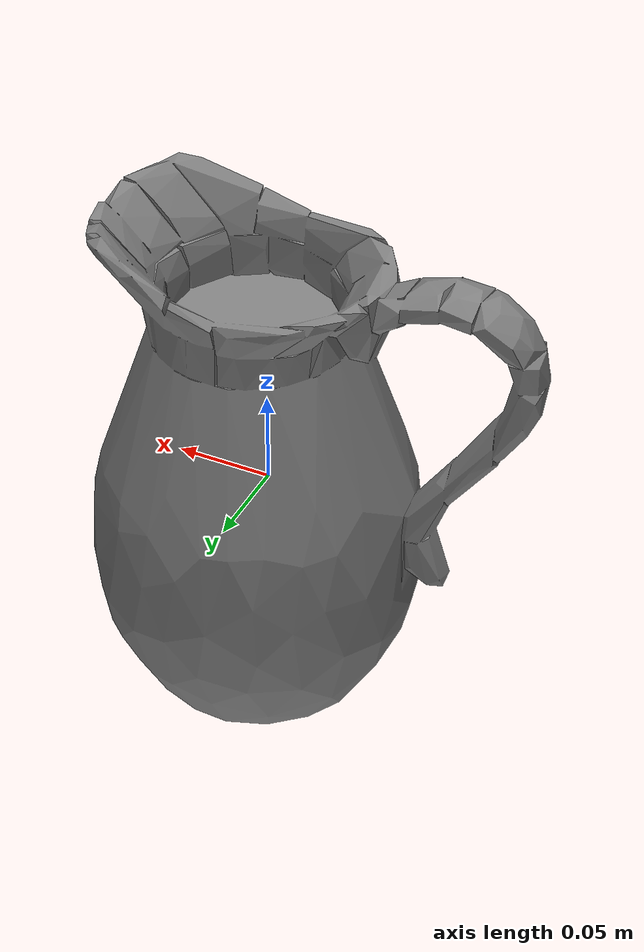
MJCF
<mujoco model="pitcher_Threshold_Porcelain_Pitcher_White_M">
  <default>
    <default class="visual">
      <geom group="2" type="mesh" contype="0" conaffinity="0" />
    </default>
    <default class="collision">
      <geom group="3" type="mesh" />
    </default>
  </default>
  <asset>
    <mesh file="pitcher_Threshold_Porcelain_Pitcher_White_M.stl" />
    <mesh file="pitcher_Threshold_Porcelain_Pitcher_White_M_collision_0.stl" />
    <mesh file="pitcher_Threshold_Porcelain_Pitcher_White_M_collision_1.stl" />
    <mesh file="pitcher_Threshold_Porcelain_Pitcher_White_M_collision_2.stl" />
    <mesh file="pitcher_Threshold_Porcelain_Pitcher_White_M_collision_3.stl" />
    <mesh file="pitcher_Threshold_Porcelain_Pitcher_White_M_collision_4.stl" />
    <mesh file="pitcher_Threshold_Porcelain_Pitcher_White_M_collision_5.stl" />
    <mesh file="pitcher_Threshold_Porcelain_Pitcher_White_M_collision_6.stl" />
    <mesh file="pitcher_Threshold_Porcelain_Pitcher_White_M_collision_7.stl" />
    <mesh file="pitcher_Threshold_Porcelain_Pitcher_White_M_collision_8.stl" />
    <mesh file="pitcher_Threshold_Porcelain_Pitcher_White_M_collision_9.stl" />
    <mesh file="pitcher_Threshold_Porcelain_Pitcher_White_M_collision_10.stl" />
    <mesh file="pitcher_Threshold_Porcelain_Pitcher_White_M_collision_11.stl" />
    <mesh file="pitcher_Threshold_Porcelain_Pitcher_White_M_collision_12.stl" />
    <mesh file="pitcher_Threshold_Porcelain_Pitcher_White_M_collision_13.stl" />
    <mesh file="pitcher_Threshold_Porcelain_Pitcher_White_M_collision_14.stl" />
    <mesh file="pitcher_Threshold_Porcelain_Pitcher_White_M_collision_15.stl" />
  </asset>
  <worldbody>
    <body name="pitcher_Threshold_Porcelain_Pitcher_White_M">
      <geom mesh="pitcher_Threshold_Porcelain_Pitcher_White_M" class="visual" />
      <geom mesh="pitcher_Threshold_Porcelain_Pitcher_White_M_collision_0" class="collision" />
      <geom mesh="pitcher_Threshold_Porcelain_Pitcher_White_M_collision_1" class="collision" />
      <geom mesh="pitcher_Threshold_Porcelain_Pitcher_White_M_collision_2" class="collision" />
      <geom mesh="pitcher_Threshold_Porcelain_Pitcher_White_M_collision_3" class="collision" />
      <geom mesh="pitcher_Threshold_Porcelain_Pitcher_White_M_collision_4" class="collision" />
      <geom mesh="pitcher_Threshold_Porcelain_Pitcher_White_M_collision_5" class="collision" />
      <geom mesh="pitcher_Threshold_Porcelain_Pitcher_White_M_collision_6" class="collision" />
      <geom mesh="pitcher_Threshold_Porcelain_Pitcher_White_M_collision_7" class="collision" />
      <geom mesh="pitcher_Threshold_Porcelain_Pitcher_White_M_collision_8" class="collision" />
      <geom mesh="pitcher_Threshold_Porcelain_Pitcher_White_M_collision_9" class="collision" />
      <geom mesh="pitcher_Threshold_Porcelain_Pitcher_White_M_collision_10" class="collision" />
      <geom mesh="pitcher_Threshold_Porcelain_Pitcher_White_M_collision_11" class="collision" />
      <geom mesh="pitcher_Threshold_Porcelain_Pitcher_White_M_collision_12" class="collision" />
      <geom mesh="pitcher_Threshold_Porcelain_Pitcher_White_M_collision_13" class="collision" />
      <geom mesh="pitcher_Threshold_Porcelain_Pitcher_White_M_collision_14" class="collision" />
      <geom mesh="pitcher_Threshold_Porcelain_Pitcher_White_M_collision_15" class="collision" />
    </body>
  </worldbody>
</mujoco>
